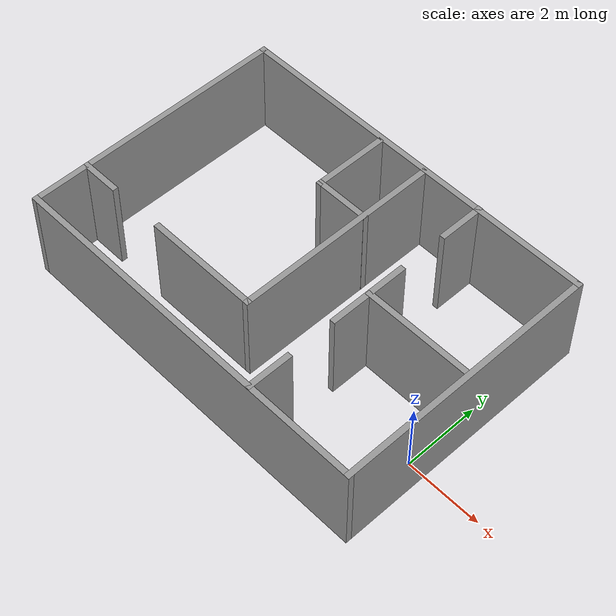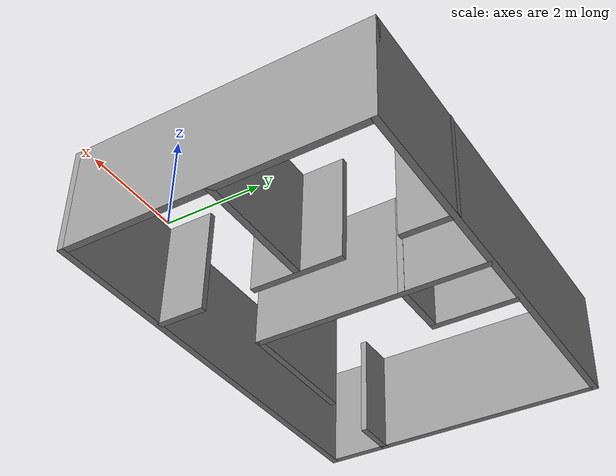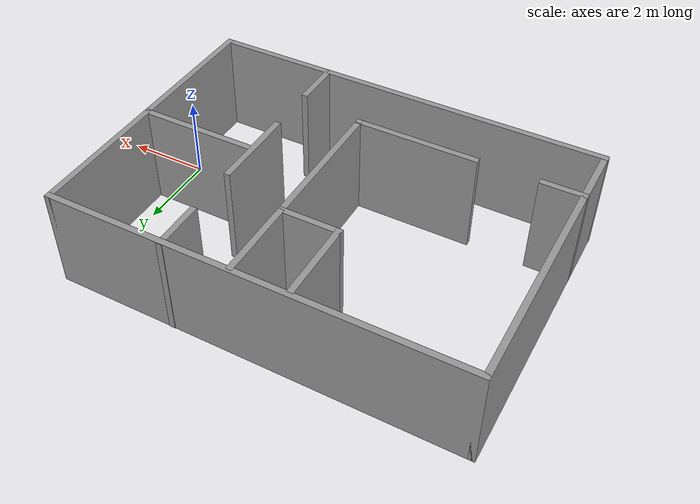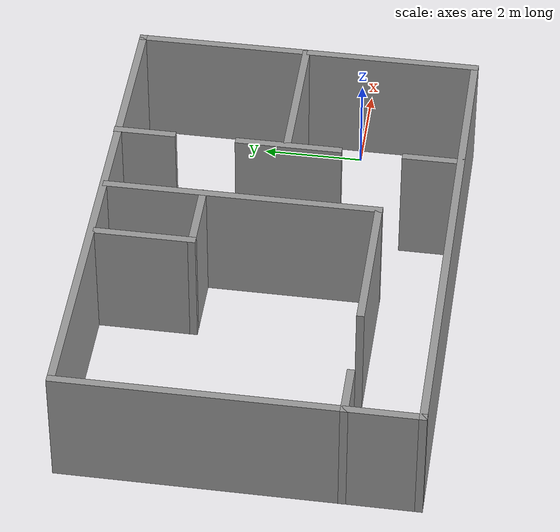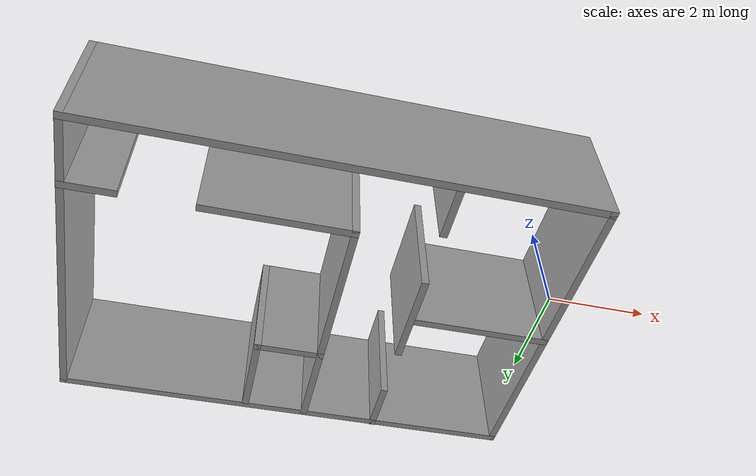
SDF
<?xml version='1.0'?>
<sdf version='1.6'>
  <model name='Movis2'>
    <pose frame=''>-4.55823 1.18565 0 0 -0 0</pose>
    <link name='Wall_1'>
      <collision name='Wall_1_Collision'>
        <geometry>
          <box>
            <size>10 0.15 2.5</size>
          </box>
        </geometry>
        <pose frame=''>0 0 1.25 0 -0 0</pose>
      </collision>
      <visual name='Wall_1_Visual'>
        <pose frame=''>0 0 1.25 0 -0 0</pose>
        <geometry>
          <box>
            <size>10 0.15 2.5</size>
          </box>
        </geometry>
        <material>
          <script>
            <uri>file://media/materials/scripts/gazebo.material</uri>
            <name>Gazebo/Grey</name>
          </script>
          <ambient>1 1 1 1</ambient>
        </material>
      </visual>
      <pose frame=''>0.001003 3.41919 0 0 -0 0</pose>
    </link>
    <link name='Wall_11'>
      <collision name='Wall_11_Collision'>
        <geometry>
          <box>
            <size>3 0.15 2.5</size>
          </box>
        </geometry>
        <pose frame=''>0 0 1.25 0 -0 0</pose>
      </collision>
      <visual name='Wall_11_Visual'>
        <pose frame=''>0 0 1.25 0 -0 0</pose>
        <geometry>
          <box>
            <size>3 0.15 2.5</size>
          </box>
        </geometry>
        <material>
          <script>
            <uri>file://media/materials/scripts/gazebo.material</uri>
            <name>Gazebo/Grey</name>
          </script>
          <ambient>1 1 1 1</ambient>
        </material>
      </visual>
      <pose frame=''>3.4774 0.029454 0 0 -0 0</pose>
    </link>
    <link name='Wall_13'>
      <collision name='Wall_13_Collision'>
        <geometry>
          <box>
            <size>1.5 0.15 2.5</size>
          </box>
        </geometry>
        <pose frame=''>0 0 1.25 0 -0 0</pose>
      </collision>
      <visual name='Wall_13_Visual'>
        <pose frame=''>0 0 1.25 0 -0 0</pose>
        <geometry>
          <box>
            <size>1.5 0.15 2.5</size>
          </box>
        </geometry>
        <material>
          <script>
            <uri>file://media/materials/scripts/gazebo.material</uri>
            <name>Gazebo/Grey</name>
          </script>
          <ambient>1 1 1 1</ambient>
        </material>
      </visual>
      <pose frame=''>-0.247843 1.45332 0 0 -0 3.14159</pose>
    </link>
    <link name='Wall_14'>
      <collision name='Wall_14_Collision'>
        <geometry>
          <box>
            <size>2 0.15 2.5</size>
          </box>
        </geometry>
        <pose frame=''>0 0 1.25 0 -0 0</pose>
      </collision>
      <visual name='Wall_14_Visual'>
        <pose frame=''>0 0 1.25 0 -0 0</pose>
        <geometry>
          <box>
            <size>2 0.15 2.5</size>
          </box>
        </geometry>
        <material>
          <script>
            <uri>file://media/materials/scripts/gazebo.material</uri>
            <name>Gazebo/Grey</name>
          </script>
          <ambient>1 1 1 1</ambient>
        </material>
      </visual>
      <pose frame=''>-0.922843 2.37832 0 0 -0 1.5708</pose>
    </link>
    <link name='Wall_2'>
      <collision name='Wall_2_Collision'>
        <geometry>
          <box>
            <size>7 0.15 2.5</size>
          </box>
        </geometry>
        <pose frame=''>0 0 1.25 0 -0 0</pose>
      </collision>
      <visual name='Wall_2_Visual'>
        <pose frame=''>0 0 1.25 0 -0 0</pose>
        <geometry>
          <box>
            <size>7 0.15 2.5</size>
          </box>
        </geometry>
        <material>
          <script>
            <uri>file://media/materials/scripts/gazebo.material</uri>
            <name>Gazebo/Grey</name>
          </script>
          <ambient>1 1 1 1</ambient>
        </material>
      </visual>
      <pose frame=''>4.926 -0.00581 0 0 0 -1.5708</pose>
    </link>
    <link name='Wall_3'>
      <collision name='Wall_3_Collision'>
        <geometry>
          <box>
            <size>10 0.15 2.5</size>
          </box>
        </geometry>
        <pose frame=''>0 0 1.25 0 -0 0</pose>
      </collision>
      <visual name='Wall_3_Visual'>
        <pose frame=''>0 0 1.25 0 -0 0</pose>
        <geometry>
          <box>
            <size>10 0.15 2.5</size>
          </box>
        </geometry>
        <material>
          <script>
            <uri>file://media/materials/scripts/gazebo.material</uri>
            <name>Gazebo/Grey</name>
          </script>
          <ambient>1 1 1 1</ambient>
        </material>
      </visual>
      <pose frame=''>0.001003 -3.43081 0 0 -0 3.14159</pose>
    </link>
    <link name='Wall_4'>
      <collision name='Wall_4_Collision'>
        <geometry>
          <box>
            <size>7 0.15 2.5</size>
          </box>
        </geometry>
        <pose frame=''>0 0 1.25 0 -0 0</pose>
      </collision>
      <visual name='Wall_4_Visual'>
        <pose frame=''>0 0 1.25 0 -0 0</pose>
        <geometry>
          <box>
            <size>7 0.15 2.5</size>
          </box>
        </geometry>
        <material>
          <script>
            <uri>file://media/materials/scripts/gazebo.material</uri>
            <name>Gazebo/Grey</name>
          </script>
          <ambient>1 1 1 1</ambient>
        </material>
      </visual>
      <pose frame=''>-4.924 -0.00581 0 0 -0 1.5708</pose>
    </link>
    <link name='Wall_6'>
      <pose frame=''>-2.251 -1.99216 0 0 -0 0</pose>
      <visual name='Wall_6_Visual_0'>
        <pose frame=''>-2.21324 0 1.25 0 -0 0</pose>
        <geometry>
          <box>
            <size>1.07352 0.15 2.5</size>
          </box>
        </geometry>
        <material>
          <script>
            <uri>file://media/materials/scripts/gazebo.material</uri>
            <name>Gazebo/Grey</name>
          </script>
          <ambient>1 1 1 1</ambient>
        </material>
      </visual>
      <collision name='Wall_6_Collision_0'>
        <geometry>
          <box>
            <size>1.07352 0.15 2.5</size>
          </box>
        </geometry>
        <pose frame=''>-2.21324 0 1.25 0 -0 0</pose>
      </collision>
      <visual name='Wall_6_Visual_1'>
        <pose frame=''>1.23676 0 1.25 0 -0 0</pose>
        <geometry>
          <box>
            <size>3.02648 0.15 2.5</size>
          </box>
        </geometry>
        <material>
          <script>
            <uri>file://media/materials/scripts/gazebo.material</uri>
            <name>Gazebo/Grey</name>
          </script>
          <ambient>1 1 1 1</ambient>
        </material>
      </visual>
      <collision name='Wall_6_Collision_1'>
        <geometry>
          <box>
            <size>3.02648 0.15 2.5</size>
          </box>
        </geometry>
        <pose frame=''>1.23676 0 1.25 0 -0 0</pose>
      </collision>
    </link>
    <link name='Wall_7'>
      <collision name='Wall_7_Collision'>
        <geometry>
          <box>
            <size>5.5 0.15 2.5</size>
          </box>
        </geometry>
        <pose frame=''>0 0 1.25 0 -0 0</pose>
      </collision>
      <visual name='Wall_7_Visual'>
        <pose frame=''>0 0 1.25 0 -0 0</pose>
        <geometry>
          <box>
            <size>5.5 0.15 2.5</size>
          </box>
        </geometry>
        <material>
          <script>
            <uri>file://media/materials/scripts/gazebo.material</uri>
            <name>Gazebo/Grey</name>
          </script>
          <ambient>1 1 1 1</ambient>
        </material>
      </visual>
      <pose frame=''>0.423996 0.682839 0 0 -0 1.5708</pose>
    </link>
    <link name='Wall_9'>
      <pose frame=''>2.03611 0.00581 0 0 0 -1.5708</pose>
      <visual name='Wall_9_Visual_0'>
        <pose frame=''>-2.87784 0 1.25 0 -0 0</pose>
        <geometry>
          <box>
            <size>1.24432 0.15 2.5</size>
          </box>
        </geometry>
        <material>
          <script>
            <uri>file://media/materials/scripts/gazebo.material</uri>
            <name>Gazebo/Grey</name>
          </script>
          <ambient>1 1 1 1</ambient>
        </material>
      </visual>
      <collision name='Wall_9_Collision_0'>
        <geometry>
          <box>
            <size>1.24432 0.15 2.5</size>
          </box>
        </geometry>
        <pose frame=''>-2.87784 0 1.25 0 -0 0</pose>
      </collision>
      <visual name='Wall_9_Visual_1'>
        <pose frame=''>0.009719 0 1.25 0 -0 0</pose>
        <geometry>
          <box>
            <size>2.13081 0.15 2.5</size>
          </box>
        </geometry>
        <material>
          <script>
            <uri>file://media/materials/scripts/gazebo.material</uri>
            <name>Gazebo/Grey</name>
          </script>
          <ambient>1 1 1 1</ambient>
        </material>
      </visual>
      <collision name='Wall_9_Collision_1'>
        <geometry>
          <box>
            <size>2.13081 0.15 2.5</size>
          </box>
        </geometry>
        <pose frame=''>0.009719 0 1.25 0 -0 0</pose>
      </collision>
      <visual name='Wall_9_Visual_2'>
        <pose frame=''>2.88756 0 1.25 0 -0 0</pose>
        <geometry>
          <box>
            <size>1.22488 0.15 2.5</size>
          </box>
        </geometry>
        <material>
          <script>
            <uri>file://media/materials/scripts/gazebo.material</uri>
            <name>Gazebo/Grey</name>
          </script>
          <ambient>1 1 1 1</ambient>
        </material>
      </visual>
      <collision name='Wall_9_Collision_2'>
        <geometry>
          <box>
            <size>1.22488 0.15 2.5</size>
          </box>
        </geometry>
        <pose frame=''>2.88756 0 1.25 0 -0 0</pose>
      </collision>
    </link>
    <static>1</static>
  </model>
</sdf>
